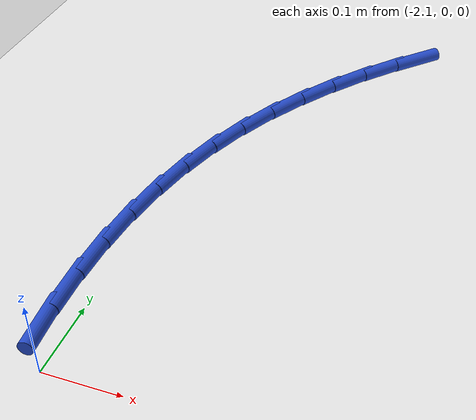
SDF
<sdf version="1.6">
 <world name="default">
  <model name="ground_plane">
   <static>1</static>
   <link name="link">
    <collision name="collision">
     <geometry><plane><normal>0 0 1</normal><size>100 100</size></plane></geometry>
     <surface><friction><ode><mu>100</mu><mu2>50</mu2></ode></friction></surface>
    </collision>
    <visual name="visual">
     <cast_shadows>0</cast_shadows>
     <geometry><plane><normal>0 0 1</normal><size>100 100</size></plane></geometry>
     <material>
      <script><uri>file://media/materials/scripts/gazebo.material</uri><name>Gazebo/WhiteGlow</name></script>
     </material>
    </visual>
   </link>
  </model>
  <model name="line">
   <link name="link_41">
    <pose>-1.8507450541026962 0.7637766218003089 0.01 0 1.57 0.8079545286900457</pose>
    <collision name="collision">
     <geometry><cylinder><radius>0.01</radius><length>0.08</length></cylinder></geometry>
    </collision>
    <visual name="visual">
     <material>
      <script><name>Gazebo/Blue</name><uri>file://media/materials/scripts/gazebo.material</uri></script>
     </material>
     <geometry><cylinder><radius>0.01</radius><length>0.08</length></cylinder></geometry>
    </visual>
   </link>
   <link name="link_42">
    <pose>-1.8934818420204411 0.7190670267317966 0.01 0 1.57 0.8643352324558387</pose>
    <collision name="collision">
     <geometry><cylinder><radius>0.01</radius><length>0.08</length></cylinder></geometry>
    </collision>
    <visual name="visual">
     <material>
      <script><name>Gazebo/Blue</name><uri>file://media/materials/scripts/gazebo.material</uri></script>
     </material>
     <geometry><cylinder><radius>0.01</radius><length>0.08</length></cylinder></geometry>
    </visual>
   </link>
   <link name="link_43">
    <pose>-1.9333107291668445 0.6723958615215486 0.01 0 1.57 0.9235941315182068</pose>
    <collision name="collision">
     <geometry><cylinder><radius>0.01</radius><length>0.08</length></cylinder></geometry>
    </collision>
    <visual name="visual">
     <material>
      <script><name>Gazebo/Blue</name><uri>file://media/materials/scripts/gazebo.material</uri></script>
     </material>
     <geometry><cylinder><radius>0.01</radius><length>0.08</length></cylinder></geometry>
    </visual>
   </link>
   <link name="link_44">
    <pose>-1.9700068385007847 0.6238431300754763 0.01 0 1.57 0.9859774397734077</pose>
    <collision name="collision">
     <geometry><cylinder><radius>0.01</radius><length>0.08</length></cylinder></geometry>
    </collision>
    <visual name="visual">
     <material>
      <script><name>Gazebo/Blue</name><uri>file://media/materials/scripts/gazebo.material</uri></script>
     </material>
     <geometry><cylinder><radius>0.01</radius><length>0.08</length></cylinder></geometry>
    </visual>
   </link>
   <link name="link_45">
    <pose>-2.0033452929811375 0.5734888362994904 0.01 0 1.57 1.051674926818625</pose>
    <collision name="collision">
     <geometry><cylinder><radius>0.01</radius><length>0.08</length></cylinder></geometry>
    </collision>
    <visual name="visual">
     <material>
      <script><name>Gazebo/Blue</name><uri>file://media/materials/scripts/gazebo.material</uri></script>
     </material>
     <geometry><cylinder><radius>0.01</radius><length>0.08</length></cylinder></geometry>
    </visual>
   </link>
   <link name="link_46">
    <pose>-2.0331012155667816 0.5214129840995019 0.01 0 1.57 1.1207955989243412</pose>
    <collision name="collision">
     <geometry><cylinder><radius>0.01</radius><length>0.08</length></cylinder></geometry>
    </collision>
    <visual name="visual">
     <material>
      <script><name>Gazebo/Blue</name><uri>file://media/materials/scripts/gazebo.material</uri></script>
     </material>
     <geometry><cylinder><radius>0.01</radius><length>0.08</length></cylinder></geometry>
    </visual>
   </link>
   <link name="link_47">
    <pose>-2.059049729216593 0.4676955773814216 0.01 0 1.57 1.1933402000635824</pose>
    <collision name="collision">
     <geometry><cylinder><radius>0.01</radius><length>0.08</length></cylinder></geometry>
    </collision>
    <visual name="visual">
     <material>
      <script><name>Gazebo/Blue</name><uri>file://media/materials/scripts/gazebo.material</uri></script>
     </material>
     <geometry><cylinder><radius>0.01</radius><length>0.08</length></cylinder></geometry>
    </visual>
   </link>
   <link name="link_48">
    <pose>-2.0809659568894485 0.4124166200511603 0.01 0 1.57 1.2684946025188724</pose>
    <collision name="collision">
     <geometry><cylinder><radius>0.01</radius><length>0.08</length></cylinder></geometry>
    </collision>
    <visual name="visual">
     <material>
      <script><name>Gazebo/Blue</name><uri>file://media/materials/scripts/gazebo.material</uri></script>
     </material>
     <geometry><cylinder><radius>0.01</radius><length>0.08</length></cylinder></geometry>
    </visual>
   </link>
   <link name="link_49">
    <pose>-2.09866358272857 0.3556680006947211 0.01 0 1.57 1.3413093388608024</pose>
    <collision name="collision">
     <geometry><cylinder><radius>0.01</radius><length>0.08</length></cylinder></geometry>
    </collision>
    <visual name="visual">
     <material>
      <script><name>Gazebo/Blue</name><uri>file://media/materials/scripts/gazebo.material</uri></script>
     </material>
     <geometry><cylinder><radius>0.01</radius><length>0.08</length></cylinder></geometry>
    </visual>
   </link>
   <link name="link_50">
    <pose>-2.1122228497797177 0.2976237622026548 0.01 0 1.57 1.4096225420521824</pose>
    <collision name="collision">
     <geometry><cylinder><radius>0.01</radius><length>0.08</length></cylinder></geometry>
    </collision>
    <visual name="visual">
     <material>
      <script><name>Gazebo/Blue</name><uri>file://media/materials/scripts/gazebo.material</uri></script>
     </material>
     <geometry><cylinder><radius>0.01</radius><length>0.08</length></cylinder></geometry>
    </visual>
   </link>
   <link name="link_51">
    <pose>-2.1218366237737945 0.23849265813653456 0.01 0 1.57 1.4734275650533588</pose>
    <collision name="collision">
     <geometry><cylinder><radius>0.01</radius><length>0.08</length></cylinder></geometry>
    </collision>
    <visual name="visual">
     <material>
      <script><name>Gazebo/Blue</name><uri>file://media/materials/scripts/gazebo.material</uri></script>
     </material>
     <geometry><cylinder><radius>0.01</radius><length>0.08</length></cylinder></geometry>
    </visual>
   </link>
   <link name="link_52">
    <pose>-2.1276981703611377 0.17848356531438062 0.01 0 1.57 1.532867048155406</pose>
    <collision name="collision">
     <geometry><cylinder><radius>0.01</radius><length>0.08</length></cylinder></geometry>
    </collision>
    <visual name="visual">
     <material>
      <script><name>Gazebo/Blue</name><uri>file://media/materials/scripts/gazebo.material</uri></script>
     </material>
     <geometry><cylinder><radius>0.01</radius><length>0.08</length></cylinder></geometry>
    </visual>
   </link>
   <link name="link_53">
    <pose>-2.130000755192088 0.11780536055421302 0.01 0 1.57 -1.553409488856383</pose>
    <collision name="collision">
     <geometry><cylinder><radius>0.01</radius><length>0.08</length></cylinder></geometry>
    </collision>
    <visual name="visual">
     <material>
      <script><name>Gazebo/Blue</name><uri>file://media/materials/scripts/gazebo.material</uri></script>
     </material>
     <geometry><cylinder><radius>0.01</radius><length>0.08</length></cylinder></geometry>
    </visual>
   </link>
   <link name="link_54">
    <pose>-2.1289376439169834 0.05666692067405215 0.01 0 1.57 -1.50191126273016</pose>
    <collision name="collision">
     <geometry><cylinder><radius>0.01</radius><length>0.08</length></cylinder></geometry>
    </collision>
    <visual name="visual">
     <material>
      <script><name>Gazebo/Blue</name><uri>file://media/materials/scripts/gazebo.material</uri></script>
     </material>
     <geometry><cylinder><radius>0.01</radius><length>0.08</length></cylinder></geometry>
    </visual>
   </link>
  </model>
 </world>
</sdf>
